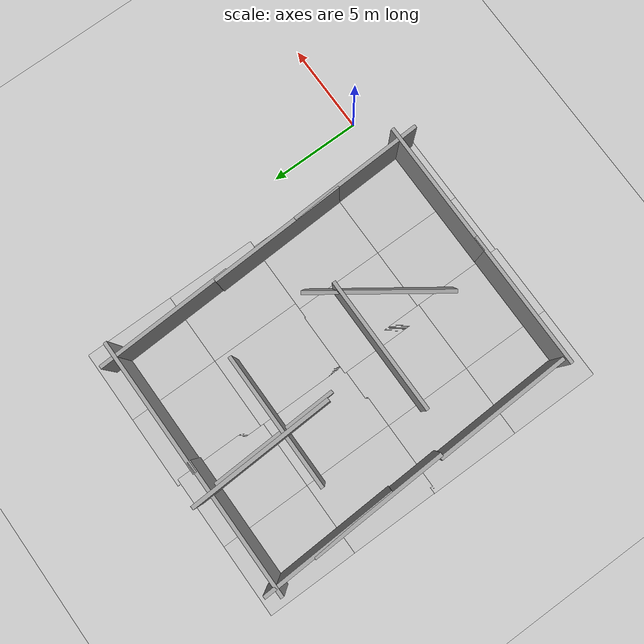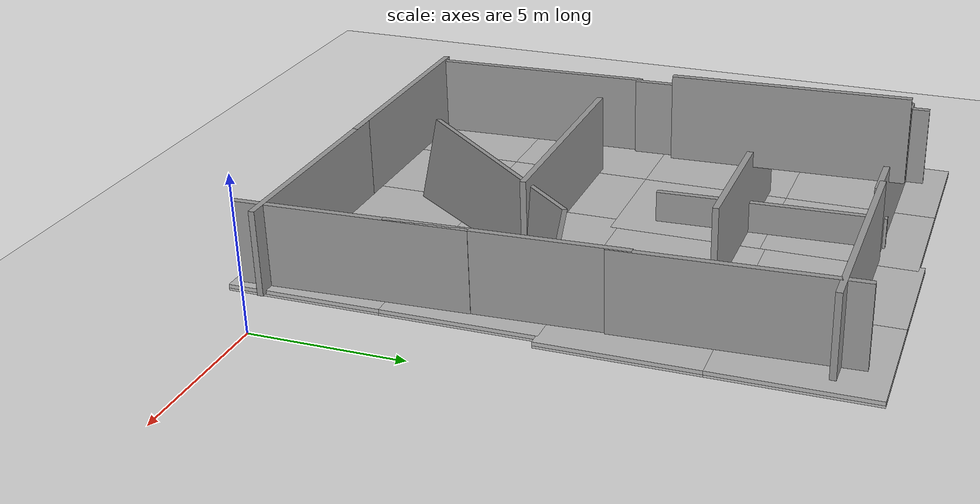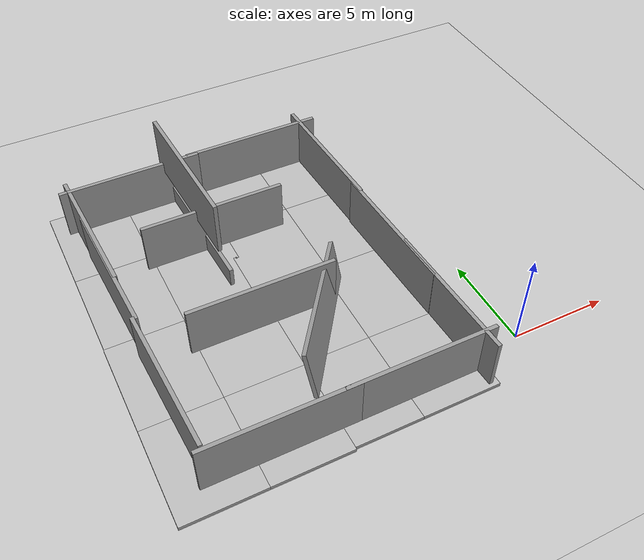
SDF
<sdf version="1.6">
 <world name="default">
  <scene><ambient>0.5 0.5 0.5 1</ambient><background>0.5 0.5 0.5 1</background><shadows>0</shadows></scene>
  <physics name="default_physics" default="0" type="ode">
   <ode>
    <solver>
     <type>quick</type>
     <iters>10</iters>
     <sor>1.3</sor>
     <use_dynamic_moi_rescaling>0</use_dynamic_moi_rescaling>
    </solver>
    <constraints>
     <cfm>0</cfm>
     <erp>0.2</erp>
     <contact_max_correcting_vel>100</contact_max_correcting_vel>
     <contact_surface_layer>0.001</contact_surface_layer>
    </constraints>
   </ode>
   <real_time_update_rate>1000</real_time_update_rate>
   <max_step_size>0.001</max_step_size>
   <real_time_factor>1</real_time_factor>
  </physics>
  <model name="ground_plane">
   <static>1</static>
   <link name="link">
    <collision name="collision">
     <geometry><plane><normal>0 0 1</normal><size>100 100</size></plane></geometry>
     <surface><friction><ode><mu>100</mu><mu2>50</mu2></ode></friction></surface>
    </collision>
    <visual name="visual">
     <cast_shadows>0</cast_shadows>
     <geometry><plane><normal>0 0 1</normal><size>100 100</size></plane></geometry>
     <material>
      <script><uri>file://media/materials/scripts/gazebo.material</uri><name>Gazebo/Grey</name></script>
     </material>
    </visual>
   </link>
  </model>
  <light name="my_light" type="directional">
   <pose>0 0 30 0 -0 0</pose>
   <diffuse>0.5 0.5 0.5 1</diffuse>
   <specular>0.1 0.1 0.1 1</specular>
   <attenuation><range>200</range></attenuation>
   <direction>0 0 -1</direction>
   <cast_shadows>0</cast_shadows>
  </light>
  <gravity>0 0 -9.8</gravity>
  <magnetic_field>6e-06 2.3e-05 -4.2e-05</magnetic_field>
  <atmosphere type="adiabatic"/>
  <spherical_coordinates>
   <surface_model>EARTH_WGS84</surface_model>
   <latitude_deg>0</latitude_deg>
   <longitude_deg>0</longitude_deg>
   <elevation>0</elevation>
   <heading_deg>0</heading_deg>
  </spherical_coordinates>
  <model name="mud_box">
   <static>1</static>
   <link name="link">
    <collision name="collision"><geometry><box><size>8 10 0.2</size></box></geometry></collision>
    <visual name="visual_1">
     <pose>-2 2.5 0 0 -0 0</pose>
     <cast_shadows>0</cast_shadows>
     <geometry><box><size>4 5 0.2</size></box></geometry>
     <material>
      <script>
       <uri>model://mud_box/materials/scripts</uri>
       <uri>model://mud_box/materials/textures</uri>
       <name>vrc/mud</name>
      </script>
     </material>
    </visual>
    <visual name="visual_2">
     <pose>2 2.5 0 0 -0 0</pose>
     <cast_shadows>0</cast_shadows>
     <geometry><box><size>4 5 0.2</size></box></geometry>
     <material>
      <script>
       <uri>model://mud_box/materials/scripts</uri>
       <uri>model://mud_box/materials/textures</uri>
       <name>vrc/mud</name>
      </script>
     </material>
    </visual>
    <visual name="visual_3">
     <pose>2 -2.5 0 0 -0 0</pose>
     <cast_shadows>0</cast_shadows>
     <geometry><box><size>4 5 0.2</size></box></geometry>
     <material>
      <script>
       <uri>model://mud_box/materials/scripts</uri>
       <uri>model://mud_box/materials/textures</uri>
       <name>vrc/mud</name>
      </script>
     </material>
    </visual>
    <visual name="visual_4">
     <pose>-2 -2.5 0 0 -0 0</pose>
     <cast_shadows>0</cast_shadows>
     <geometry><box><size>4 5 0.2</size></box></geometry>
     <material>
      <script>
       <uri>model://mud_box/materials/scripts</uri>
       <uri>model://mud_box/materials/textures</uri>
       <name>vrc/mud</name>
      </script>
     </material>
    </visual>
   </link>
   <pose>-13.6729 2.93723 0 0 -0 0</pose>
  </model>
  <model name="mud_box_clone">
   <static>1</static>
   <link name="link">
    <collision name="collision"><geometry><box><size>8 10 0.2</size></box></geometry></collision>
    <visual name="visual_1">
     <pose>-2 2.5 0 0 -0 0</pose>
     <cast_shadows>0</cast_shadows>
     <geometry><box><size>4 5 0.2</size></box></geometry>
     <material>
      <script>
       <uri>model://mud_box/materials/scripts</uri>
       <uri>model://mud_box/materials/textures</uri>
       <name>vrc/mud</name>
      </script>
     </material>
    </visual>
    <visual name="visual_2">
     <pose>2 2.5 0 0 -0 0</pose>
     <cast_shadows>0</cast_shadows>
     <geometry><box><size>4 5 0.2</size></box></geometry>
     <material>
      <script>
       <uri>model://mud_box/materials/scripts</uri>
       <uri>model://mud_box/materials/textures</uri>
       <name>vrc/mud</name>
      </script>
     </material>
    </visual>
    <visual name="visual_3">
     <pose>2 -2.5 0 0 -0 0</pose>
     <cast_shadows>0</cast_shadows>
     <geometry><box><size>4 5 0.2</size></box></geometry>
     <material>
      <script>
       <uri>model://mud_box/materials/scripts</uri>
       <uri>model://mud_box/materials/textures</uri>
       <name>vrc/mud</name>
      </script>
     </material>
    </visual>
    <visual name="visual_4">
     <pose>-2 -2.5 0 0 -0 0</pose>
     <cast_shadows>0</cast_shadows>
     <geometry><box><size>4 5 0.2</size></box></geometry>
     <material>
      <script>
       <uri>model://mud_box/materials/scripts</uri>
       <uri>model://mud_box/materials/textures</uri>
       <name>vrc/mud</name>
      </script>
     </material>
    </visual>
   </link>
   <pose>-6.27673 3.03166 0 0 -0 0</pose>
  </model>
  <model name="mud_box_clone_0">
   <static>1</static>
   <link name="link">
    <collision name="collision"><geometry><box><size>8 10 0.2</size></box></geometry></collision>
    <visual name="visual_1">
     <pose>-2 2.5 0 0 -0 0</pose>
     <cast_shadows>0</cast_shadows>
     <geometry><box><size>4 5 0.2</size></box></geometry>
     <material>
      <script>
       <uri>model://mud_box/materials/scripts</uri>
       <uri>model://mud_box/materials/textures</uri>
       <name>vrc/mud</name>
      </script>
     </material>
    </visual>
    <visual name="visual_2">
     <pose>2 2.5 0 0 -0 0</pose>
     <cast_shadows>0</cast_shadows>
     <geometry><box><size>4 5 0.2</size></box></geometry>
     <material>
      <script>
       <uri>model://mud_box/materials/scripts</uri>
       <uri>model://mud_box/materials/textures</uri>
       <name>vrc/mud</name>
      </script>
     </material>
    </visual>
    <visual name="visual_3">
     <pose>2 -2.5 0 0 -0 0</pose>
     <cast_shadows>0</cast_shadows>
     <geometry><box><size>4 5 0.2</size></box></geometry>
     <material>
      <script>
       <uri>model://mud_box/materials/scripts</uri>
       <uri>model://mud_box/materials/textures</uri>
       <name>vrc/mud</name>
      </script>
     </material>
    </visual>
    <visual name="visual_4">
     <pose>-2 -2.5 0 0 -0 0</pose>
     <cast_shadows>0</cast_shadows>
     <geometry><box><size>4 5 0.2</size></box></geometry>
     <material>
      <script>
       <uri>model://mud_box/materials/scripts</uri>
       <uri>model://mud_box/materials/textures</uri>
       <name>vrc/mud</name>
      </script>
     </material>
    </visual>
   </link>
   <pose>-13.6533 12.8011 0 0 -0 0</pose>
  </model>
  <model name="mud_box_clone_1">
   <static>1</static>
   <link name="link">
    <collision name="collision"><geometry><box><size>8 10 0.2</size></box></geometry></collision>
    <visual name="visual_1">
     <pose>-2 2.5 0 0 -0 0</pose>
     <cast_shadows>0</cast_shadows>
     <geometry><box><size>4 5 0.2</size></box></geometry>
     <material>
      <script>
       <uri>model://mud_box/materials/scripts</uri>
       <uri>model://mud_box/materials/textures</uri>
       <name>vrc/mud</name>
      </script>
     </material>
    </visual>
    <visual name="visual_2">
     <pose>2 2.5 0 0 -0 0</pose>
     <cast_shadows>0</cast_shadows>
     <geometry><box><size>4 5 0.2</size></box></geometry>
     <material>
      <script>
       <uri>model://mud_box/materials/scripts</uri>
       <uri>model://mud_box/materials/textures</uri>
       <name>vrc/mud</name>
      </script>
     </material>
    </visual>
    <visual name="visual_3">
     <pose>2 -2.5 0 0 -0 0</pose>
     <cast_shadows>0</cast_shadows>
     <geometry><box><size>4 5 0.2</size></box></geometry>
     <material>
      <script>
       <uri>model://mud_box/materials/scripts</uri>
       <uri>model://mud_box/materials/textures</uri>
       <name>vrc/mud</name>
      </script>
     </material>
    </visual>
    <visual name="visual_4">
     <pose>-2 -2.5 0 0 -0 0</pose>
     <cast_shadows>0</cast_shadows>
     <geometry><box><size>4 5 0.2</size></box></geometry>
     <material>
      <script>
       <uri>model://mud_box/materials/scripts</uri>
       <uri>model://mud_box/materials/textures</uri>
       <name>vrc/mud</name>
      </script>
     </material>
    </visual>
   </link>
   <pose>-5.93234 12.9739 0 0 -0 0</pose>
  </model>
  <model name="grey_wall">
   <static>1</static>
   <link name="link">
    <pose>0 0 1.4 0 -0 0</pose>
    <collision name="collision"><geometry><box><size>7.5 0.2 2.8</size></box></geometry></collision>
    <visual name="visual">
     <cast_shadows>0</cast_shadows>
     <geometry><box><size>7.5 0.2 2.8</size></box></geometry>
     <material>
      <script>
       <uri>model://grey_wall/materials/scripts</uri>
       <uri>model://grey_wall/materials/textures</uri>
       <name>vrc/grey_wall</name>
      </script>
     </material>
    </visual>
   </link>
   <pose>-12.5408 -0.797438 0 0 -0 0</pose>
  </model>
  <model name="grey_wall_clone">
   <static>1</static>
   <link name="link">
    <pose>0 0 1.4 0 -0 0</pose>
    <collision name="collision"><geometry><box><size>7.5 0.2 2.8</size></box></geometry></collision>
    <visual name="visual">
     <cast_shadows>0</cast_shadows>
     <geometry><box><size>7.5 0.2 2.8</size></box></geometry>
     <material>
      <script>
       <uri>model://grey_wall/materials/scripts</uri>
       <uri>model://grey_wall/materials/textures</uri>
       <name>vrc/grey_wall</name>
      </script>
     </material>
    </visual>
   </link>
   <pose>-5.83392 -0.792529 0 0 -0 0</pose>
  </model>
  <model name="grey_wall_clone_0">
   <static>1</static>
   <link name="link">
    <pose>0 0 1.4 0 -0 0</pose>
    <collision name="collision"><geometry><box><size>7.5 0.2 2.8</size></box></geometry></collision>
    <visual name="visual">
     <cast_shadows>0</cast_shadows>
     <geometry><box><size>7.5 0.2 2.8</size></box></geometry>
     <material>
      <script>
       <uri>model://grey_wall/materials/scripts</uri>
       <uri>model://grey_wall/materials/textures</uri>
       <name>vrc/grey_wall</name>
      </script>
     </material>
    </visual>
   </link>
   <pose>-13.1729 16.3716 0 0 -0 0</pose>
  </model>
  <model name="grey_wall_clone_1">
   <static>1</static>
   <link name="link">
    <pose>0 0 1.4 0 -0 0</pose>
    <collision name="collision"><geometry><box><size>7.5 0.2 2.8</size></box></geometry></collision>
    <visual name="visual">
     <cast_shadows>0</cast_shadows>
     <geometry><box><size>7.5 0.2 2.8</size></box></geometry>
     <material>
      <script>
       <uri>model://grey_wall/materials/scripts</uri>
       <uri>model://grey_wall/materials/textures</uri>
       <name>vrc/grey_wall</name>
      </script>
     </material>
    </visual>
   </link>
   <pose>-6.29956 16.4331 0 0 -0 0</pose>
  </model>
  <model name="grey_wall_clone_2">
   <static>1</static>
   <link name="link">
    <pose>0 0 1.4 0 -0 0</pose>
    <collision name="collision"><geometry><box><size>7.5 0.2 2.8</size></box></geometry></collision>
    <visual name="visual">
     <cast_shadows>0</cast_shadows>
     <geometry><box><size>7.5 0.2 2.8</size></box></geometry>
     <material>
      <script>
       <uri>model://grey_wall/materials/scripts</uri>
       <uri>model://grey_wall/materials/textures</uri>
       <name>vrc/grey_wall</name>
      </script>
     </material>
    </visual>
   </link>
   <pose>-16.0452 3.11513 0 0 0 -1.52853</pose>
  </model>
  <model name="grey_wall_clone_2_clone">
   <static>1</static>
   <link name="link">
    <pose>0 0 1.4 0 -0 0</pose>
    <collision name="collision"><geometry><box><size>7.5 0.2 2.8</size></box></geometry></collision>
    <visual name="visual">
     <cast_shadows>0</cast_shadows>
     <geometry><box><size>7.5 0.2 2.8</size></box></geometry>
     <material>
      <script>
       <uri>model://grey_wall/materials/scripts</uri>
       <uri>model://grey_wall/materials/textures</uri>
       <name>vrc/grey_wall</name>
      </script>
     </material>
    </visual>
   </link>
   <pose>-16.2149 10.4361 0 0 0 -1.52853</pose>
  </model>
  <model name="grey_wall_clone_2_clone_0">
   <static>1</static>
   <link name="link">
    <pose>0 0 1.4 0 -0 0</pose>
    <collision name="collision"><geometry><box><size>7.5 0.2 2.8</size></box></geometry></collision>
    <visual name="visual">
     <cast_shadows>0</cast_shadows>
     <geometry><box><size>7.5 0.2 2.8</size></box></geometry>
     <material>
      <script>
       <uri>model://grey_wall/materials/scripts</uri>
       <uri>model://grey_wall/materials/textures</uri>
       <name>vrc/grey_wall</name>
      </script>
     </material>
    </visual>
   </link>
   <pose>-16.2731 13.302 0 0 0 -1.52853</pose>
  </model>
  <model name="grey_wall_clone_2_clone_1">
   <static>1</static>
   <link name="link">
    <pose>0 0 1.4 0 -0 0</pose>
    <collision name="collision"><geometry><box><size>7.5 0.2 2.8</size></box></geometry></collision>
    <visual name="visual">
     <cast_shadows>0</cast_shadows>
     <geometry><box><size>7.5 0.2 2.8</size></box></geometry>
     <material>
      <script>
       <uri>model://grey_wall/materials/scripts</uri>
       <uri>model://grey_wall/materials/textures</uri>
       <name>vrc/grey_wall</name>
      </script>
     </material>
    </visual>
   </link>
   <pose>-3.25502 13.5223 0 0 0 -1.52853</pose>
  </model>
  <model name="grey_wall_clone_2_clone_2">
   <static>1</static>
   <link name="link">
    <pose>0 0 1.4 0 -0 0</pose>
    <collision name="collision"><geometry><box><size>7.5 0.2 2.8</size></box></geometry></collision>
    <visual name="visual">
     <cast_shadows>0</cast_shadows>
     <geometry><box><size>7.5 0.2 2.8</size></box></geometry>
     <material>
      <script>
       <uri>model://grey_wall/materials/scripts</uri>
       <uri>model://grey_wall/materials/textures</uri>
       <name>vrc/grey_wall</name>
      </script>
     </material>
    </visual>
   </link>
   <pose>-3.03027 6.80009 0 0 0 -1.52853</pose>
  </model>
  <model name="grey_wall_clone_2_clone_3">
   <static>1</static>
   <link name="link">
    <pose>0 0 1.4 0 -0 0</pose>
    <collision name="collision"><geometry><box><size>7.5 0.2 2.8</size></box></geometry></collision>
    <visual name="visual">
     <cast_shadows>0</cast_shadows>
     <geometry><box><size>7.5 0.2 2.8</size></box></geometry>
     <material>
      <script>
       <uri>model://grey_wall/materials/scripts</uri>
       <uri>model://grey_wall/materials/textures</uri>
       <name>vrc/grey_wall</name>
      </script>
     </material>
    </visual>
   </link>
   <pose>-2.81259 1.95805 0 0 0 -1.52853</pose>
  </model>
  <model name="grey_wall_0">
   <static>1</static>
   <link name="link">
    <pose>0 0 1.4 0 -0 0</pose>
    <collision name="collision"><geometry><box><size>7.5 0.2 2.8</size></box></geometry></collision>
    <visual name="visual">
     <cast_shadows>0</cast_shadows>
     <geometry><box><size>7.5 0.2 2.8</size></box></geometry>
     <material>
      <script>
       <uri>model://grey_wall/materials/scripts</uri>
       <uri>model://grey_wall/materials/textures</uri>
       <name>vrc/grey_wall</name>
      </script>
     </material>
    </visual>
   </link>
   <pose>-10.3084 12.0588 0 0 -0 0</pose>
  </model>
  <model name="grey_wall_1">
   <static>1</static>
   <link name="link">
    <pose>0 0 1.4 0 -0 0</pose>
    <collision name="collision"><geometry><box><size>7.5 0.2 2.8</size></box></geometry></collision>
    <visual name="visual">
     <cast_shadows>0</cast_shadows>
     <geometry><box><size>7.5 0.2 2.8</size></box></geometry>
     <material>
      <script>
       <uri>model://grey_wall/materials/scripts</uri>
       <uri>model://grey_wall/materials/textures</uri>
       <name>vrc/grey_wall</name>
      </script>
     </material>
    </visual>
   </link>
   <pose>-10.2978 5.99469 0 0 -0 0</pose>
  </model>
  <model name="grey_wall_2">
   <static>1</static>
   <link name="link">
    <pose>0 0 1.4 0 -0 0</pose>
    <collision name="collision"><geometry><box><size>7.5 0.2 2.8</size></box></geometry></collision>
    <visual name="visual">
     <cast_shadows>0</cast_shadows>
     <geometry><box><size>7.5 0.2 2.8</size></box></geometry>
     <material>
      <script>
       <uri>model://grey_wall/materials/scripts</uri>
       <uri>model://grey_wall/materials/textures</uri>
       <name>vrc/grey_wall</name>
      </script>
     </material>
    </visual>
   </link>
   <pose>-7.82899 4.05686 -0.152596 -0.203838 0.061597 0.942367</pose>
  </model>
  <model name="grey_wall_clone_2_clone_4">
   <static>1</static>
   <link name="link">
    <pose>0 0 1.4 0 -0 0</pose>
    <collision name="collision"><geometry><box><size>7.5 0.2 2.8</size></box></geometry></collision>
    <visual name="visual">
     <cast_shadows>0</cast_shadows>
     <geometry><box><size>7.5 0.2 2.8</size></box></geometry>
     <material>
      <script>
       <uri>model://grey_wall/materials/scripts</uri>
       <uri>model://grey_wall/materials/textures</uri>
       <name>vrc/grey_wall</name>
      </script>
     </material>
    </visual>
   </link>
   <pose>-10.8301 12.8189 -1.6649 0 0 -1.52853</pose>
  </model>
  <model name="grey_wall_clone_2_clone_5">
   <static>1</static>
   <link name="link">
    <pose>0 0 1.4 0 -0 0</pose>
    <collision name="collision"><geometry><box><size>7.5 0.2 2.8</size></box></geometry></collision>
    <visual name="visual">
     <cast_shadows>0</cast_shadows>
     <geometry><box><size>7.5 0.2 2.8</size></box></geometry>
     <material>
      <script>
       <uri>model://grey_wall/materials/scripts</uri>
       <uri>model://grey_wall/materials/textures</uri>
       <name>vrc/grey_wall</name>
      </script>
     </material>
    </visual>
   </link>
   <pose>-11.1429 13.2023 2.28227 0 0 -1.52853</pose>
  </model>
 </world>
</sdf>
